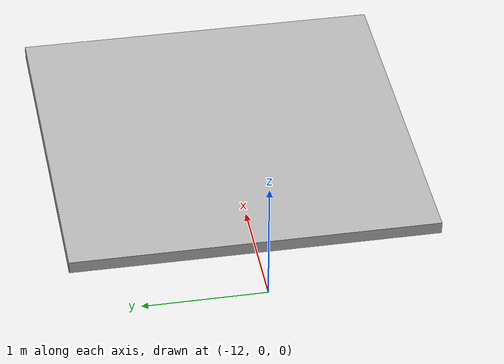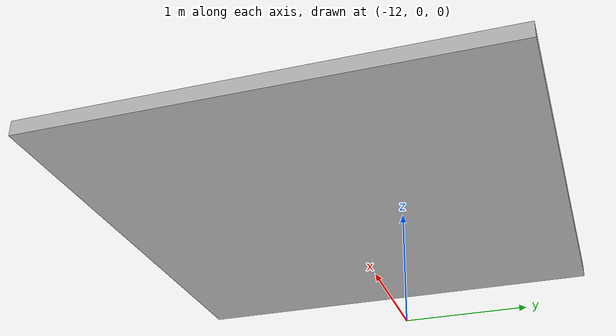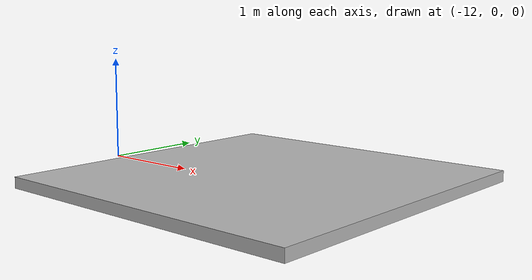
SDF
<?xml version='1.0'?>
<sdf version="1.4">
  <model name="landing_platform">
    <pose>-10 0 0.05 0 0 0</pose>
    <static>false</static>
    <link name="link">
      <inertial>
        <mass>5.0</mass>
        <inertia> <!-- inertias are tricky to compute -->
          <!-- http://gazebosim.org/tutorials?tut=inertia&cat=build_robot -->
          <ixx>3.73915</ixx>       <!-- for a box: ixx = 0.083 * mass * (y*y + z*z) -->
          <ixy>0.0</ixy>         <!-- for a box: ixy = 0 -->
          <ixz>0.0</ixz>         <!-- for a box: ixz = 0 -->
          <iyy>3.73915</iyy>       <!-- for a box: iyy = 0.083 * mass * (x*x + z*z) -->
          <iyz>0.0</iyz>         <!-- for a box: iyz = 0 -->
          <izz>7.47</izz>       <!-- for a box: izz = 0.083 * mass * (x*x + y*y) -->
        </inertia>
      </inertial>
      <collision name="collision">
        <geometry>
          <box>
            <size>3 3 0.1</size>
          </box>
        </geometry>
      </collision>
      <visual name="visual">
        <geometry>
          <box>
            <size>3 3 0.1</size>
          </box>
        </geometry>
      </visual>
    </link>
    <plugin name="moving_platform" filename="libmoving_platform_plugin.so">
    <link_name>link</link_name>
    <UAV_model_name>plane_custom</UAV_model_name>
    <robotNamespace></robotNamespace>
    </plugin>
  </model>
</sdf>
